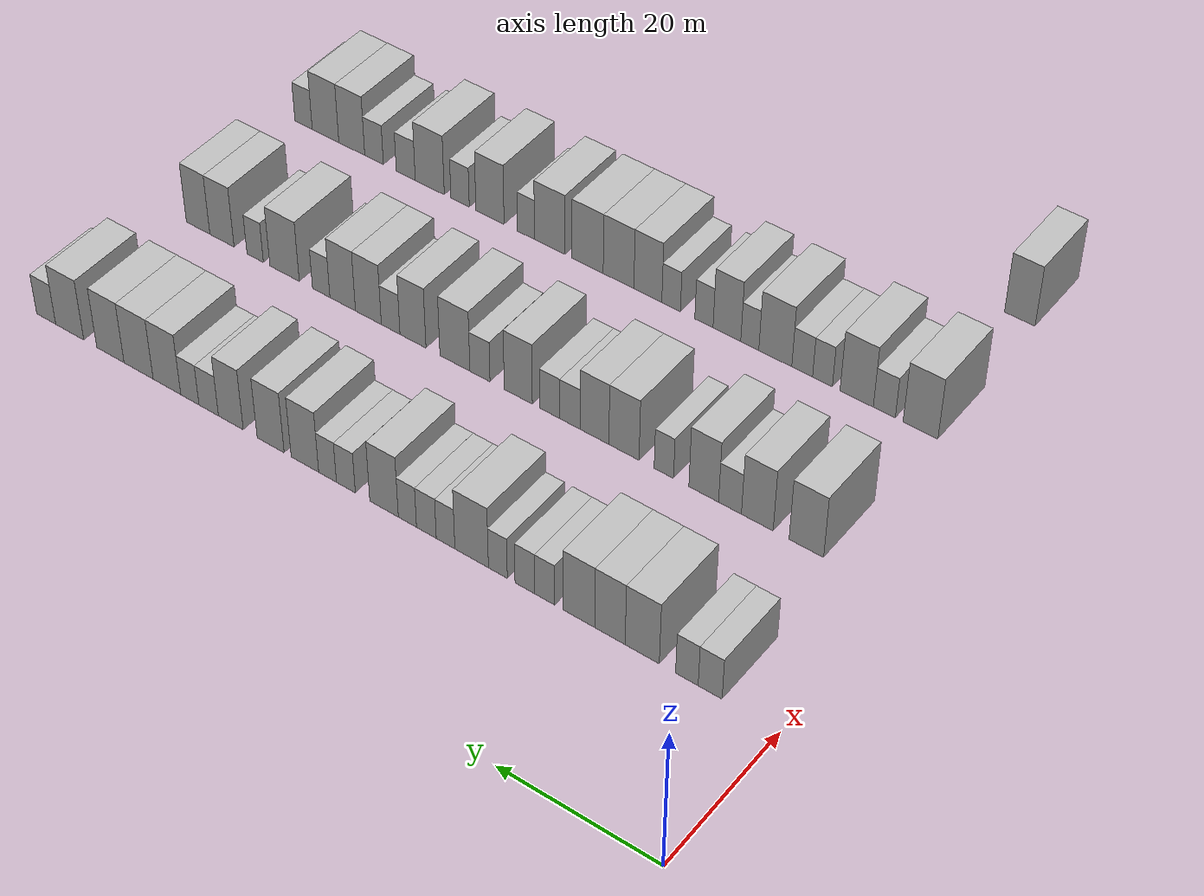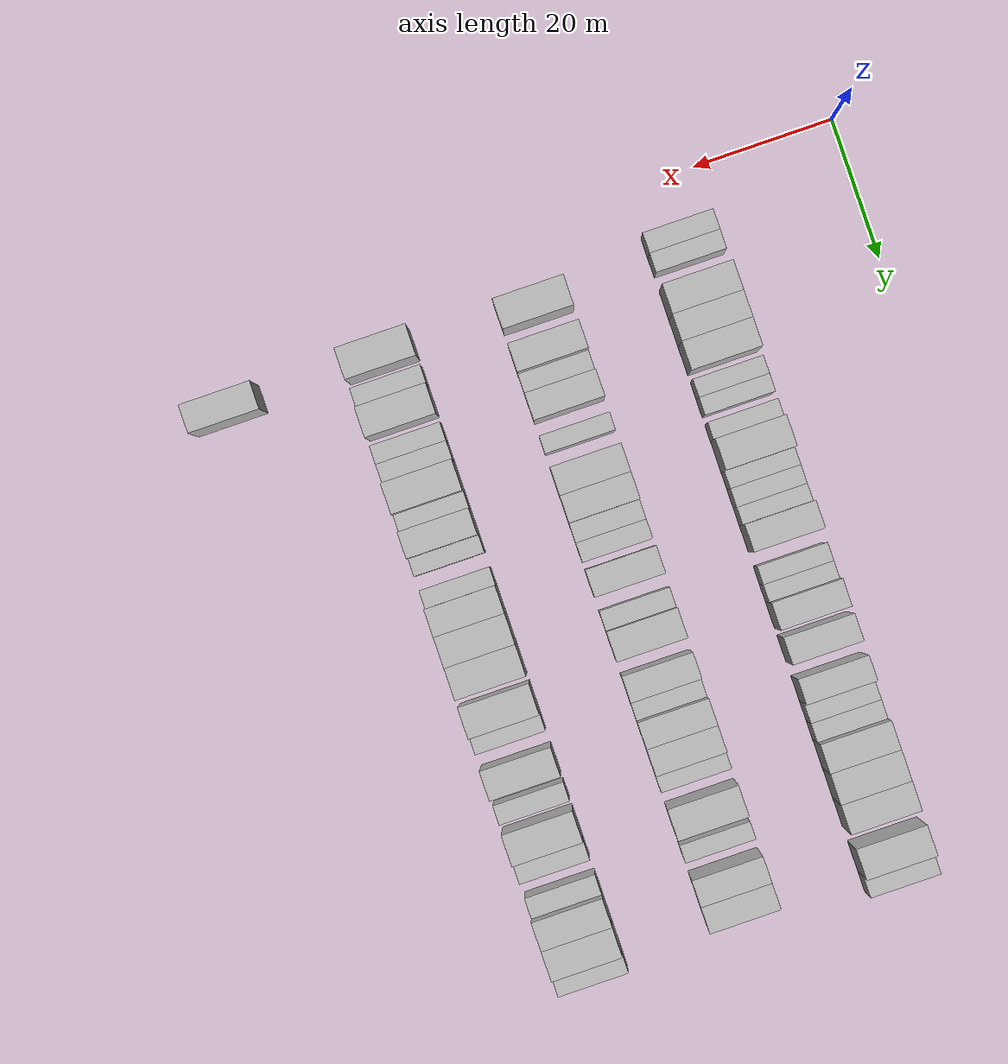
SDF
<sdf version="1.6">
 <world name="default">
  <model name="building_88">
   <static>1</static>
   <pose>25.0000 8.4128 0 0.000000 0.000000 0.000000</pose>
   <link name="link">
    <pose>0 0 3.00 0 0 0</pose>
    <collision name="collision"><geometry><box><size>10.0000 2.8950 6.0000</size></box></geometry></collision>
    <visual name="visual">
     <cast_shadows>0</cast_shadows>
     <geometry><box><size>10.0000 2.8950 6.0000</size></box></geometry>
     <material>
      <script>
       <uri>model://HANNAS_wall/materials/scripts</uri>
       <uri>model://HANNAS_wall/materials/textures</uri>
       <name>vrc/HANNAS_wall</name>
      </script>
     </material>
    </visual>
   </link>
  </model>
  <model name="building_89">
   <static>1</static>
   <pose>25.0000 11.2362 0 0.000000 0.000000 0.000000</pose>
   <link name="link">
    <pose>0 0 3.00 0 0 0</pose>
    <collision name="collision"><geometry><box><size>10.0000 2.7518 6.0000</size></box></geometry></collision>
    <visual name="visual">
     <cast_shadows>0</cast_shadows>
     <geometry><box><size>10.0000 2.7518 6.0000</size></box></geometry>
     <material>
      <script>
       <uri>model://HANNAS_wall/materials/scripts</uri>
       <uri>model://HANNAS_wall/materials/textures</uri>
       <name>vrc/HANNAS_wall</name>
      </script>
     </material>
    </visual>
   </link>
  </model>
  <model name="building_90">
   <static>1</static>
   <pose>25.0000 16.7315 0 0.000000 0.000000 0.000000</pose>
   <link name="link">
    <pose>0 0 4.50 0 0 0</pose>
    <collision name="collision"><geometry><box><size>10.0000 4.2388 9.0000</size></box></geometry></collision>
    <visual name="visual">
     <cast_shadows>0</cast_shadows>
     <geometry><box><size>10.0000 4.2388 9.0000</size></box></geometry>
     <material>
      <script>
       <uri>model://HANNAS_wall/materials/scripts</uri>
       <uri>model://HANNAS_wall/materials/textures</uri>
       <name>vrc/HANNAS_wall</name>
      </script>
     </material>
    </visual>
   </link>
  </model>
  <model name="building_91">
   <static>1</static>
   <pose>25.0000 20.7581 0 0.000000 0.000000 0.000000</pose>
   <link name="link">
    <pose>0 0 4.50 0 0 0</pose>
    <collision name="collision"><geometry><box><size>10.0000 3.8143 9.0000</size></box></geometry></collision>
    <visual name="visual">
     <cast_shadows>0</cast_shadows>
     <geometry><box><size>10.0000 3.8143 9.0000</size></box></geometry>
     <material>
      <script>
       <uri>model://HANNAS_wall/materials/scripts</uri>
       <uri>model://HANNAS_wall/materials/textures</uri>
       <name>vrc/HANNAS_wall</name>
      </script>
     </material>
    </visual>
   </link>
  </model>
  <model name="building_92">
   <static>1</static>
   <pose>25.0000 24.7005 0 0.000000 0.000000 0.000000</pose>
   <link name="link">
    <pose>0 0 4.50 0 0 0</pose>
    <collision name="collision"><geometry><box><size>10.0000 4.0705 9.0000</size></box></geometry></collision>
    <visual name="visual">
     <cast_shadows>0</cast_shadows>
     <geometry><box><size>10.0000 4.0705 9.0000</size></box></geometry>
     <material>
      <script>
       <uri>model://HANNAS_wall/materials/scripts</uri>
       <uri>model://HANNAS_wall/materials/textures</uri>
       <name>vrc/HANNAS_wall</name>
      </script>
     </material>
    </visual>
   </link>
  </model>
  <model name="building_93">
   <static>1</static>
   <pose>25.0000 29.0292 0 0.000000 0.000000 0.000000</pose>
   <link name="link">
    <pose>0 0 3.00 0 0 0</pose>
    <collision name="collision"><geometry><box><size>10.0000 2.5867 6.0000</size></box></geometry></collision>
    <visual name="visual">
     <cast_shadows>0</cast_shadows>
     <geometry><box><size>10.0000 2.5867 6.0000</size></box></geometry>
     <material>
      <script>
       <uri>model://HANNAS_wall/materials/scripts</uri>
       <uri>model://HANNAS_wall/materials/textures</uri>
       <name>vrc/HANNAS_wall</name>
      </script>
     </material>
    </visual>
   </link>
  </model>
  <model name="building_94">
   <static>1</static>
   <pose>25.0000 31.5953 0 0.000000 0.000000 0.000000</pose>
   <link name="link">
    <pose>0 0 3.00 0 0 0</pose>
    <collision name="collision"><geometry><box><size>10.0000 2.5455 6.0000</size></box></geometry></collision>
    <visual name="visual">
     <cast_shadows>0</cast_shadows>
     <geometry><box><size>10.0000 2.5455 6.0000</size></box></geometry>
     <material>
      <script>
       <uri>model://HANNAS_wall/materials/scripts</uri>
       <uri>model://HANNAS_wall/materials/textures</uri>
       <name>vrc/HANNAS_wall</name>
      </script>
     </material>
    </visual>
   </link>
  </model>
  <model name="building_95">
   <static>1</static>
   <pose>25.0000 35.1066 0 0.000000 0.000000 0.000000</pose>
   <link name="link">
    <pose>0 0 3.00 0 0 0</pose>
    <collision name="collision"><geometry><box><size>10.0000 2.4771 6.0000</size></box></geometry></collision>
    <visual name="visual">
     <cast_shadows>0</cast_shadows>
     <geometry><box><size>10.0000 2.4771 6.0000</size></box></geometry>
     <material>
      <script>
       <uri>model://HANNAS_wall/materials/scripts</uri>
       <uri>model://HANNAS_wall/materials/textures</uri>
       <name>vrc/HANNAS_wall</name>
      </script>
     </material>
    </visual>
   </link>
  </model>
  <model name="building_96">
   <static>1</static>
   <pose>25.0000 38.5634 0 0.000000 0.000000 0.000000</pose>
   <link name="link">
    <pose>0 0 4.50 0 0 0</pose>
    <collision name="collision"><geometry><box><size>10.0000 4.4365 9.0000</size></box></geometry></collision>
    <visual name="visual">
     <cast_shadows>0</cast_shadows>
     <geometry><box><size>10.0000 4.4365 9.0000</size></box></geometry>
     <material>
      <script>
       <uri>model://HANNAS_wall/materials/scripts</uri>
       <uri>model://HANNAS_wall/materials/textures</uri>
       <name>vrc/HANNAS_wall</name>
      </script>
     </material>
    </visual>
   </link>
  </model>
  <model name="building_97">
   <static>1</static>
   <pose>25.0000 42.0231 0 0.000000 0.000000 0.000000</pose>
   <link name="link">
    <pose>0 0 3.00 0 0 0</pose>
    <collision name="collision"><geometry><box><size>10.0000 2.4829 6.0000</size></box></geometry></collision>
    <visual name="visual">
     <cast_shadows>0</cast_shadows>
     <geometry><box><size>10.0000 2.4829 6.0000</size></box></geometry>
     <material>
      <script>
       <uri>model://HANNAS_wall/materials/scripts</uri>
       <uri>model://HANNAS_wall/materials/textures</uri>
       <name>vrc/HANNAS_wall</name>
      </script>
     </material>
    </visual>
   </link>
  </model>
  <model name="building_98">
   <static>1</static>
   <pose>25.0000 44.5956 0 0.000000 0.000000 0.000000</pose>
   <link name="link">
    <pose>0 0 3.00 0 0 0</pose>
    <collision name="collision"><geometry><box><size>10.0000 2.6620 6.0000</size></box></geometry></collision>
    <visual name="visual">
     <cast_shadows>0</cast_shadows>
     <geometry><box><size>10.0000 2.6620 6.0000</size></box></geometry>
     <material>
      <script>
       <uri>model://HANNAS_wall/materials/scripts</uri>
       <uri>model://HANNAS_wall/materials/textures</uri>
       <name>vrc/HANNAS_wall</name>
      </script>
     </material>
    </visual>
   </link>
  </model>
  <model name="building_99">
   <static>1</static>
   <pose>25.0000 47.1581 0 0.000000 0.000000 0.000000</pose>
   <link name="link">
    <pose>0 0 3.00 0 0 0</pose>
    <collision name="collision"><geometry><box><size>10.0000 2.4629 6.0000</size></box></geometry></collision>
    <visual name="visual">
     <cast_shadows>0</cast_shadows>
     <geometry><box><size>10.0000 2.4629 6.0000</size></box></geometry>
     <material>
      <script>
       <uri>model://HANNAS_wall/materials/scripts</uri>
       <uri>model://HANNAS_wall/materials/textures</uri>
       <name>vrc/HANNAS_wall</name>
      </script>
     </material>
    </visual>
   </link>
  </model>
  <model name="building_100">
   <static>1</static>
   <pose>25.0000 50.3414 0 0.000000 0.000000 0.000000</pose>
   <link name="link">
    <pose>0 0 4.50 0 0 0</pose>
    <collision name="collision"><geometry><box><size>10.0000 3.9038 9.0000</size></box></geometry></collision>
    <visual name="visual">
     <cast_shadows>0</cast_shadows>
     <geometry><box><size>10.0000 3.9038 9.0000</size></box></geometry>
     <material>
      <script>
       <uri>model://HANNAS_wall/materials/scripts</uri>
       <uri>model://HANNAS_wall/materials/textures</uri>
       <name>vrc/HANNAS_wall</name>
      </script>
     </material>
    </visual>
   </link>
  </model>
  <model name="building_101">
   <static>1</static>
   <pose>25.0000 55.6025 0 0.000000 0.000000 0.000000</pose>
   <link name="link">
    <pose>0 0 3.00 0 0 0</pose>
    <collision name="collision"><geometry><box><size>10.0000 2.6183 6.0000</size></box></geometry></collision>
    <visual name="visual">
     <cast_shadows>0</cast_shadows>
     <geometry><box><size>10.0000 2.6183 6.0000</size></box></geometry>
     <material>
      <script>
       <uri>model://HANNAS_wall/materials/scripts</uri>
       <uri>model://HANNAS_wall/materials/textures</uri>
       <name>vrc/HANNAS_wall</name>
      </script>
     </material>
    </visual>
   </link>
  </model>
  <model name="building_102">
   <static>1</static>
   <pose>25.0000 58.1548 0 0.000000 0.000000 0.000000</pose>
   <link name="link">
    <pose>0 0 3.00 0 0 0</pose>
    <collision name="collision"><geometry><box><size>10.0000 2.4864 6.0000</size></box></geometry></collision>
    <visual name="visual">
     <cast_shadows>0</cast_shadows>
     <geometry><box><size>10.0000 2.4864 6.0000</size></box></geometry>
     <material>
      <script>
       <uri>model://HANNAS_wall/materials/scripts</uri>
       <uri>model://HANNAS_wall/materials/textures</uri>
       <name>vrc/HANNAS_wall</name>
      </script>
     </material>
    </visual>
   </link>
  </model>
  <model name="building_103">
   <static>1</static>
   <pose>25.0000 61.3391 0 0.000000 0.000000 0.000000</pose>
   <link name="link">
    <pose>0 0 4.50 0 0 0</pose>
    <collision name="collision"><geometry><box><size>10.0000 3.8822 9.0000</size></box></geometry></collision>
    <visual name="visual">
     <cast_shadows>0</cast_shadows>
     <geometry><box><size>10.0000 3.8822 9.0000</size></box></geometry>
     <material>
      <script>
       <uri>model://HANNAS_wall/materials/scripts</uri>
       <uri>model://HANNAS_wall/materials/textures</uri>
       <name>vrc/HANNAS_wall</name>
      </script>
     </material>
    </visual>
   </link>
  </model>
  <model name="building_104">
   <static>1</static>
   <pose>25.0000 66.2139 0 0.000000 0.000000 0.000000</pose>
   <link name="link">
    <pose>0 0 4.50 0 0 0</pose>
    <collision name="collision"><geometry><box><size>10.0000 3.8675 9.0000</size></box></geometry></collision>
    <visual name="visual">
     <cast_shadows>0</cast_shadows>
     <geometry><box><size>10.0000 3.8675 9.0000</size></box></geometry>
     <material>
      <script>
       <uri>model://HANNAS_wall/materials/scripts</uri>
       <uri>model://HANNAS_wall/materials/textures</uri>
       <name>vrc/HANNAS_wall</name>
      </script>
     </material>
    </visual>
   </link>
  </model>
  <model name="building_105">
   <static>1</static>
   <pose>25.0000 71.9529 0 0.000000 0.000000 0.000000</pose>
   <link name="link">
    <pose>0 0 4.50 0 0 0</pose>
    <collision name="collision"><geometry><box><size>10.0000 3.6105 9.0000</size></box></geometry></collision>
    <visual name="visual">
     <cast_shadows>0</cast_shadows>
     <geometry><box><size>10.0000 3.6105 9.0000</size></box></geometry>
     <material>
      <script>
       <uri>model://HANNAS_wall/materials/scripts</uri>
       <uri>model://HANNAS_wall/materials/textures</uri>
       <name>vrc/HANNAS_wall</name>
      </script>
     </material>
    </visual>
   </link>
  </model>
  <model name="building_106">
   <static>1</static>
   <pose>25.0000 75.1859 0 0.000000 0.000000 0.000000</pose>
   <link name="link">
    <pose>0 0 3.00 0 0 0</pose>
    <collision name="collision"><geometry><box><size>10.0000 2.8554 6.0000</size></box></geometry></collision>
    <visual name="visual">
     <cast_shadows>0</cast_shadows>
     <geometry><box><size>10.0000 2.8554 6.0000</size></box></geometry>
     <material>
      <script>
       <uri>model://HANNAS_wall/materials/scripts</uri>
       <uri>model://HANNAS_wall/materials/textures</uri>
       <name>vrc/HANNAS_wall</name>
      </script>
     </material>
    </visual>
   </link>
  </model>
  <model name="building_107">
   <static>1</static>
   <pose>25.0000 77.9592 0 0.000000 0.000000 0.000000</pose>
   <link name="link">
    <pose>0 0 3.00 0 0 0</pose>
    <collision name="collision"><geometry><box><size>10.0000 2.6913 6.0000</size></box></geometry></collision>
    <visual name="visual">
     <cast_shadows>0</cast_shadows>
     <geometry><box><size>10.0000 2.6913 6.0000</size></box></geometry>
     <material>
      <script>
       <uri>model://HANNAS_wall/materials/scripts</uri>
       <uri>model://HANNAS_wall/materials/textures</uri>
       <name>vrc/HANNAS_wall</name>
      </script>
     </material>
    </visual>
   </link>
  </model>
  <model name="building_108">
   <static>1</static>
   <pose>25.0000 81.3682 0 0.000000 0.000000 0.000000</pose>
   <link name="link">
    <pose>0 0 4.50 0 0 0</pose>
    <collision name="collision"><geometry><box><size>10.0000 4.1267 9.0000</size></box></geometry></collision>
    <visual name="visual">
     <cast_shadows>0</cast_shadows>
     <geometry><box><size>10.0000 4.1267 9.0000</size></box></geometry>
     <material>
      <script>
       <uri>model://HANNAS_wall/materials/scripts</uri>
       <uri>model://HANNAS_wall/materials/textures</uri>
       <name>vrc/HANNAS_wall</name>
      </script>
     </material>
    </visual>
   </link>
  </model>
  <model name="building_109">
   <static>1</static>
   <pose>25.0000 85.6349 0 0.000000 0.000000 0.000000</pose>
   <link name="link">
    <pose>0 0 4.50 0 0 0</pose>
    <collision name="collision"><geometry><box><size>10.0000 4.4066 9.0000</size></box></geometry></collision>
    <visual name="visual">
     <cast_shadows>0</cast_shadows>
     <geometry><box><size>10.0000 4.4066 9.0000</size></box></geometry>
     <material>
      <script>
       <uri>model://HANNAS_wall/materials/scripts</uri>
       <uri>model://HANNAS_wall/materials/textures</uri>
       <name>vrc/HANNAS_wall</name>
      </script>
     </material>
    </visual>
   </link>
  </model>
  <model name="building_110">
   <static>1</static>
   <pose>25.0000 89.9217 0 0.000000 0.000000 0.000000</pose>
   <link name="link">
    <pose>0 0 4.50 0 0 0</pose>
    <collision name="collision"><geometry><box><size>10.0000 4.1670 9.0000</size></box></geometry></collision>
    <visual name="visual">
     <cast_shadows>0</cast_shadows>
     <geometry><box><size>10.0000 4.1670 9.0000</size></box></geometry>
     <material>
      <script>
       <uri>model://HANNAS_wall/materials/scripts</uri>
       <uri>model://HANNAS_wall/materials/textures</uri>
       <name>vrc/HANNAS_wall</name>
      </script>
     </material>
    </visual>
   </link>
  </model>
  <model name="building_111">
   <static>1</static>
   <pose>25.0000 96.1864 0 0.000000 0.000000 0.000000</pose>
   <link name="link">
    <pose>0 0 4.50 0 0 0</pose>
    <collision name="collision"><geometry><box><size>10.0000 4.3625 9.0000</size></box></geometry></collision>
    <visual name="visual">
     <cast_shadows>0</cast_shadows>
     <geometry><box><size>10.0000 4.3625 9.0000</size></box></geometry>
     <material>
      <script>
       <uri>model://HANNAS_wall/materials/scripts</uri>
       <uri>model://HANNAS_wall/materials/textures</uri>
       <name>vrc/HANNAS_wall</name>
      </script>
     </material>
    </visual>
   </link>
  </model>
  <model name="building_112">
   <static>1</static>
   <pose>25.0000 99.8600 0 0.000000 0.000000 0.000000</pose>
   <link name="link">
    <pose>0 0 3.00 0 0 0</pose>
    <collision name="collision"><geometry><box><size>10.0000 2.9847 6.0000</size></box></geometry></collision>
    <visual name="visual">
     <cast_shadows>0</cast_shadows>
     <geometry><box><size>10.0000 2.9847 6.0000</size></box></geometry>
     <material>
      <script>
       <uri>model://HANNAS_wall/materials/scripts</uri>
       <uri>model://HANNAS_wall/materials/textures</uri>
       <name>vrc/HANNAS_wall</name>
      </script>
     </material>
    </visual>
   </link>
  </model>
  <model name="building_278">
   <static>1</static>
   <pose>47.0000 11.2818 0 0.000000 0.000000 0.000000</pose>
   <link name="link">
    <pose>0 0 4.50 0 0 0</pose>
    <collision name="collision"><geometry><box><size>10.0000 4.3058 9.0000</size></box></geometry></collision>
    <visual name="visual">
     <cast_shadows>0</cast_shadows>
     <geometry><box><size>10.0000 4.3058 9.0000</size></box></geometry>
     <material>
      <script>
       <uri>model://HANNAS_wall/materials/scripts</uri>
       <uri>model://HANNAS_wall/materials/textures</uri>
       <name>vrc/HANNAS_wall</name>
      </script>
     </material>
    </visual>
   </link>
  </model>
  <model name="building_279">
   <static>1</static>
   <pose>47.0000 17.4504 0 0.000000 0.000000 0.000000</pose>
   <link name="link">
    <pose>0 0 4.50 0 0 0</pose>
    <collision name="collision"><geometry><box><size>10.0000 4.0314 9.0000</size></box></geometry></collision>
    <visual name="visual">
     <cast_shadows>0</cast_shadows>
     <geometry><box><size>10.0000 4.0314 9.0000</size></box></geometry>
     <material>
      <script>
       <uri>model://HANNAS_wall/materials/scripts</uri>
       <uri>model://HANNAS_wall/materials/textures</uri>
       <name>vrc/HANNAS_wall</name>
      </script>
     </material>
    </visual>
   </link>
  </model>
  <model name="building_280">
   <static>1</static>
   <pose>47.0000 20.9299 0 0.000000 0.000000 0.000000</pose>
   <link name="link">
    <pose>0 0 3.00 0 0 0</pose>
    <collision name="collision"><geometry><box><size>10.0000 2.9275 6.0000</size></box></geometry></collision>
    <visual name="visual">
     <cast_shadows>0</cast_shadows>
     <geometry><box><size>10.0000 2.9275 6.0000</size></box></geometry>
     <material>
      <script>
       <uri>model://HANNAS_wall/materials/scripts</uri>
       <uri>model://HANNAS_wall/materials/textures</uri>
       <name>vrc/HANNAS_wall</name>
      </script>
     </material>
    </visual>
   </link>
  </model>
  <model name="building_281">
   <static>1</static>
   <pose>47.0000 24.3168 0 0.000000 0.000000 0.000000</pose>
   <link name="link">
    <pose>0 0 4.50 0 0 0</pose>
    <collision name="collision"><geometry><box><size>10.0000 3.8464 9.0000</size></box></geometry></collision>
    <visual name="visual">
     <cast_shadows>0</cast_shadows>
     <geometry><box><size>10.0000 3.8464 9.0000</size></box></geometry>
     <material>
      <script>
       <uri>model://HANNAS_wall/materials/scripts</uri>
       <uri>model://HANNAS_wall/materials/textures</uri>
       <name>vrc/HANNAS_wall</name>
      </script>
     </material>
    </visual>
   </link>
  </model>
  <model name="building_282">
   <static>1</static>
   <pose>47.0000 29.5136 0 0.000000 0.000000 0.000000</pose>
   <link name="link">
    <pose>0 0 3.00 0 0 0</pose>
    <collision name="collision"><geometry><box><size>10.0000 2.5473 6.0000</size></box></geometry></collision>
    <visual name="visual">
     <cast_shadows>0</cast_shadows>
     <geometry><box><size>10.0000 2.5473 6.0000</size></box></geometry>
     <material>
      <script>
       <uri>model://HANNAS_wall/materials/scripts</uri>
       <uri>model://HANNAS_wall/materials/textures</uri>
       <name>vrc/HANNAS_wall</name>
      </script>
     </material>
    </visual>
   </link>
  </model>
  <model name="building_283">
   <static>1</static>
   <pose>47.0000 34.8023 0 0.000000 0.000000 0.000000</pose>
   <link name="link">
    <pose>0 0 4.50 0 0 0</pose>
    <collision name="collision"><geometry><box><size>10.0000 4.0301 9.0000</size></box></geometry></collision>
    <visual name="visual">
     <cast_shadows>0</cast_shadows>
     <geometry><box><size>10.0000 4.0301 9.0000</size></box></geometry>
     <material>
      <script>
       <uri>model://HANNAS_wall/materials/scripts</uri>
       <uri>model://HANNAS_wall/materials/textures</uri>
       <name>vrc/HANNAS_wall</name>
      </script>
     </material>
    </visual>
   </link>
  </model>
  <model name="building_284">
   <static>1</static>
   <pose>47.0000 38.7387 0 0.000000 0.000000 0.000000</pose>
   <link name="link">
    <pose>0 0 4.50 0 0 0</pose>
    <collision name="collision"><geometry><box><size>10.0000 3.8426 9.0000</size></box></geometry></collision>
    <visual name="visual">
     <cast_shadows>0</cast_shadows>
     <geometry><box><size>10.0000 3.8426 9.0000</size></box></geometry>
     <material>
      <script>
       <uri>model://HANNAS_wall/materials/scripts</uri>
       <uri>model://HANNAS_wall/materials/textures</uri>
       <name>vrc/HANNAS_wall</name>
      </script>
     </material>
    </visual>
   </link>
  </model>
  <model name="building_285">
   <static>1</static>
   <pose>47.0000 42.0485 0 0.000000 0.000000 0.000000</pose>
   <link name="link">
    <pose>0 0 3.00 0 0 0</pose>
    <collision name="collision"><geometry><box><size>10.0000 2.7769 6.0000</size></box></geometry></collision>
    <visual name="visual">
     <cast_shadows>0</cast_shadows>
     <geometry><box><size>10.0000 2.7769 6.0000</size></box></geometry>
     <material>
      <script>
       <uri>model://HANNAS_wall/materials/scripts</uri>
       <uri>model://HANNAS_wall/materials/textures</uri>
       <name>vrc/HANNAS_wall</name>
      </script>
     </material>
    </visual>
   </link>
  </model>
  <model name="building_286">
   <static>1</static>
   <pose>47.0000 44.8257 0 0.000000 0.000000 0.000000</pose>
   <link name="link">
    <pose>0 0 3.00 0 0 0</pose>
    <collision name="collision"><geometry><box><size>10.0000 2.7775 6.0000</size></box></geometry></collision>
    <visual name="visual">
     <cast_shadows>0</cast_shadows>
     <geometry><box><size>10.0000 2.7775 6.0000</size></box></geometry>
     <material>
      <script>
       <uri>model://HANNAS_wall/materials/scripts</uri>
       <uri>model://HANNAS_wall/materials/textures</uri>
       <name>vrc/HANNAS_wall</name>
      </script>
     </material>
    </visual>
   </link>
  </model>
  <model name="building_287">
   <static>1</static>
   <pose>47.0000 49.1620 0 0.000000 0.000000 0.000000</pose>
   <link name="link">
    <pose>0 0 4.50 0 0 0</pose>
    <collision name="collision"><geometry><box><size>10.0000 3.8951 9.0000</size></box></geometry></collision>
    <visual name="visual">
     <cast_shadows>0</cast_shadows>
     <geometry><box><size>10.0000 3.8951 9.0000</size></box></geometry>
     <material>
      <script>
       <uri>model://HANNAS_wall/materials/scripts</uri>
       <uri>model://HANNAS_wall/materials/textures</uri>
       <name>vrc/HANNAS_wall</name>
      </script>
     </material>
    </visual>
   </link>
  </model>
  <model name="building_288">
   <static>1</static>
   <pose>47.0000 54.5222 0 0.000000 0.000000 0.000000</pose>
   <link name="link">
    <pose>0 0 3.00 0 0 0</pose>
    <collision name="collision"><geometry><box><size>10.0000 2.8253 6.0000</size></box></geometry></collision>
    <visual name="visual">
     <cast_shadows>0</cast_shadows>
     <geometry><box><size>10.0000 2.8253 6.0000</size></box></geometry>
     <material>
      <script>
       <uri>model://HANNAS_wall/materials/scripts</uri>
       <uri>model://HANNAS_wall/materials/textures</uri>
       <name>vrc/HANNAS_wall</name>
      </script>
     </material>
    </visual>
   </link>
  </model>
  <model name="building_289">
   <static>1</static>
   <pose>47.0000 58.0649 0 0.000000 0.000000 0.000000</pose>
   <link name="link">
    <pose>0 0 4.50 0 0 0</pose>
    <collision name="collision"><geometry><box><size>10.0000 4.2601 9.0000</size></box></geometry></collision>
    <visual name="visual">
     <cast_shadows>0</cast_shadows>
     <geometry><box><size>10.0000 4.2601 9.0000</size></box></geometry>
     <material>
      <script>
       <uri>model://HANNAS_wall/materials/scripts</uri>
       <uri>model://HANNAS_wall/materials/textures</uri>
       <name>vrc/HANNAS_wall</name>
      </script>
     </material>
    </visual>
   </link>
  </model>
  <model name="building_290">
   <static>1</static>
   <pose>47.0000 64.0743 0 0.000000 0.000000 0.000000</pose>
   <link name="link">
    <pose>0 0 4.50 0 0 0</pose>
    <collision name="collision"><geometry><box><size>10.0000 3.7587 9.0000</size></box></geometry></collision>
    <visual name="visual">
     <cast_shadows>0</cast_shadows>
     <geometry><box><size>10.0000 3.7587 9.0000</size></box></geometry>
     <material>
      <script>
       <uri>model://HANNAS_wall/materials/scripts</uri>
       <uri>model://HANNAS_wall/materials/textures</uri>
       <name>vrc/HANNAS_wall</name>
      </script>
     </material>
    </visual>
   </link>
  </model>
  <model name="building_291">
   <static>1</static>
   <pose>47.0000 67.3117 0 0.000000 0.000000 0.000000</pose>
   <link name="link">
    <pose>0 0 3.00 0 0 0</pose>
    <collision name="collision"><geometry><box><size>10.0000 2.7162 6.0000</size></box></geometry></collision>
    <visual name="visual">
     <cast_shadows>0</cast_shadows>
     <geometry><box><size>10.0000 2.7162 6.0000</size></box></geometry>
     <material>
      <script>
       <uri>model://HANNAS_wall/materials/scripts</uri>
       <uri>model://HANNAS_wall/materials/textures</uri>
       <name>vrc/HANNAS_wall</name>
      </script>
     </material>
    </visual>
   </link>
  </model>
  <model name="building_292">
   <static>1</static>
   <pose>47.0000 70.5729 0 0.000000 0.000000 0.000000</pose>
   <link name="link">
    <pose>0 0 4.50 0 0 0</pose>
    <collision name="collision"><geometry><box><size>10.0000 3.8060 9.0000</size></box></geometry></collision>
    <visual name="visual">
     <cast_shadows>0</cast_shadows>
     <geometry><box><size>10.0000 3.8060 9.0000</size></box></geometry>
     <material>
      <script>
       <uri>model://HANNAS_wall/materials/scripts</uri>
       <uri>model://HANNAS_wall/materials/textures</uri>
       <name>vrc/HANNAS_wall</name>
      </script>
     </material>
    </visual>
   </link>
  </model>
  <model name="building_293">
   <static>1</static>
   <pose>47.0000 74.3754 0 0.000000 0.000000 0.000000</pose>
   <link name="link">
    <pose>0 0 4.50 0 0 0</pose>
    <collision name="collision"><geometry><box><size>10.0000 3.7990 9.0000</size></box></geometry></collision>
    <visual name="visual">
     <cast_shadows>0</cast_shadows>
     <geometry><box><size>10.0000 3.7990 9.0000</size></box></geometry>
     <material>
      <script>
       <uri>model://HANNAS_wall/materials/scripts</uri>
       <uri>model://HANNAS_wall/materials/textures</uri>
       <name>vrc/HANNAS_wall</name>
      </script>
     </material>
    </visual>
   </link>
  </model>
  <model name="building_294">
   <static>1</static>
   <pose>47.0000 77.5771 0 0.000000 0.000000 0.000000</pose>
   <link name="link">
    <pose>0 0 3.00 0 0 0</pose>
    <collision name="collision"><geometry><box><size>10.0000 2.6044 6.0000</size></box></geometry></collision>
    <visual name="visual">
     <cast_shadows>0</cast_shadows>
     <geometry><box><size>10.0000 2.6044 6.0000</size></box></geometry>
     <material>
      <script>
       <uri>model://HANNAS_wall/materials/scripts</uri>
       <uri>model://HANNAS_wall/materials/textures</uri>
       <name>vrc/HANNAS_wall</name>
      </script>
     </material>
    </visual>
   </link>
  </model>
  <model name="building_295">
   <static>1</static>
   <pose>47.0000 83.1102 0 0.000000 0.000000 0.000000</pose>
   <link name="link">
    <pose>0 0 4.50 0 0 0</pose>
    <collision name="collision"><geometry><box><size>10.0000 4.4619 9.0000</size></box></geometry></collision>
    <visual name="visual">
     <cast_shadows>0</cast_shadows>
     <geometry><box><size>10.0000 4.4619 9.0000</size></box></geometry>
     <material>
      <script>
       <uri>model://HANNAS_wall/materials/scripts</uri>
       <uri>model://HANNAS_wall/materials/textures</uri>
       <name>vrc/HANNAS_wall</name>
      </script>
     </material>
    </visual>
   </link>
  </model>
  <model name="building_296">
   <static>1</static>
   <pose>47.0000 87.6035 0 0.000000 0.000000 0.000000</pose>
   <link name="link">
    <pose>0 0 3.00 0 0 0</pose>
    <collision name="collision"><geometry><box><size>10.0000 2.5248 6.0000</size></box></geometry></collision>
    <visual name="visual">
     <cast_shadows>0</cast_shadows>
     <geometry><box><size>10.0000 2.5248 6.0000</size></box></geometry>
     <material>
      <script>
       <uri>model://HANNAS_wall/materials/scripts</uri>
       <uri>model://HANNAS_wall/materials/textures</uri>
       <name>vrc/HANNAS_wall</name>
      </script>
     </material>
    </visual>
   </link>
  </model>
  <model name="building_297">
   <static>1</static>
   <pose>47.0000 92.7547 0 0.000000 0.000000 0.000000</pose>
   <link name="link">
    <pose>0 0 4.50 0 0 0</pose>
    <collision name="collision"><geometry><box><size>10.0000 3.7776 9.0000</size></box></geometry></collision>
    <visual name="visual">
     <cast_shadows>0</cast_shadows>
     <geometry><box><size>10.0000 3.7776 9.0000</size></box></geometry>
     <material>
      <script>
       <uri>model://HANNAS_wall/materials/scripts</uri>
       <uri>model://HANNAS_wall/materials/textures</uri>
       <name>vrc/HANNAS_wall</name>
      </script>
     </material>
    </visual>
   </link>
  </model>
  <model name="building_298">
   <static>1</static>
   <pose>47.0000 96.4904 0 0.000000 0.000000 0.000000</pose>
   <link name="link">
    <pose>0 0 4.50 0 0 0</pose>
    <collision name="collision"><geometry><box><size>10.0000 3.6939 9.0000</size></box></geometry></collision>
    <visual name="visual">
     <cast_shadows>0</cast_shadows>
     <geometry><box><size>10.0000 3.6939 9.0000</size></box></geometry>
     <material>
      <script>
       <uri>model://HANNAS_wall/materials/scripts</uri>
       <uri>model://HANNAS_wall/materials/textures</uri>
       <name>vrc/HANNAS_wall</name>
      </script>
     </material>
    </visual>
   </link>
  </model>
  <model name="building_469">
   <static>1</static>
   <pose>69.0000 10.7435 0 0.000000 0.000000 0.000000</pose>
   <link name="link">
    <pose>0 0 4.50 0 0 0</pose>
    <collision name="collision"><geometry><box><size>10.0000 4.4380 9.0000</size></box></geometry></collision>
    <visual name="visual">
     <cast_shadows>0</cast_shadows>
     <geometry><box><size>10.0000 4.4380 9.0000</size></box></geometry>
     <material>
      <script>
       <uri>model://HANNAS_wall/materials/scripts</uri>
       <uri>model://HANNAS_wall/materials/textures</uri>
       <name>vrc/HANNAS_wall</name>
      </script>
     </material>
    </visual>
   </link>
  </model>
  <model name="building_470">
   <static>1</static>
   <pose>69.0000 15.3808 0 0.000000 0.000000 0.000000</pose>
   <link name="link">
    <pose>0 0 3.00 0 0 0</pose>
    <collision name="collision"><geometry><box><size>10.0000 2.8367 6.0000</size></box></geometry></collision>
    <visual name="visual">
     <cast_shadows>0</cast_shadows>
     <geometry><box><size>10.0000 2.8367 6.0000</size></box></geometry>
     <material>
      <script>
       <uri>model://HANNAS_wall/materials/scripts</uri>
       <uri>model://HANNAS_wall/materials/textures</uri>
       <name>vrc/HANNAS_wall</name>
      </script>
     </material>
    </visual>
   </link>
  </model>
  <model name="building_471">
   <static>1</static>
   <pose>69.0000 18.9654 0 0.000000 0.000000 0.000000</pose>
   <link name="link">
    <pose>0 0 4.50 0 0 0</pose>
    <collision name="collision"><geometry><box><size>10.0000 4.3324 9.0000</size></box></geometry></collision>
    <visual name="visual">
     <cast_shadows>0</cast_shadows>
     <geometry><box><size>10.0000 4.3324 9.0000</size></box></geometry>
     <material>
      <script>
       <uri>model://HANNAS_wall/materials/scripts</uri>
       <uri>model://HANNAS_wall/materials/textures</uri>
       <name>vrc/HANNAS_wall</name>
      </script>
     </material>
    </visual>
   </link>
  </model>
  <model name="building_472">
   <static>1</static>
   <pose>69.0000 23.4364 0 0.000000 0.000000 0.000000</pose>
   <link name="link">
    <pose>0 0 3.00 0 0 0</pose>
    <collision name="collision"><geometry><box><size>10.0000 2.6097 6.0000</size></box></geometry></collision>
    <visual name="visual">
     <cast_shadows>0</cast_shadows>
     <geometry><box><size>10.0000 2.6097 6.0000</size></box></geometry>
     <material>
      <script>
       <uri>model://HANNAS_wall/materials/scripts</uri>
       <uri>model://HANNAS_wall/materials/textures</uri>
       <name>vrc/HANNAS_wall</name>
      </script>
     </material>
    </visual>
   </link>
  </model>
  <model name="building_473">
   <static>1</static>
   <pose>69.0000 26.1209 0 0.000000 0.000000 0.000000</pose>
   <link name="link">
    <pose>0 0 3.00 0 0 0</pose>
    <collision name="collision"><geometry><box><size>10.0000 2.7591 6.0000</size></box></geometry></collision>
    <visual name="visual">
     <cast_shadows>0</cast_shadows>
     <geometry><box><size>10.0000 2.7591 6.0000</size></box></geometry>
     <material>
      <script>
       <uri>model://HANNAS_wall/materials/scripts</uri>
       <uri>model://HANNAS_wall/materials/textures</uri>
       <name>vrc/HANNAS_wall</name>
      </script>
     </material>
    </visual>
   </link>
  </model>
  <model name="building_474">
   <static>1</static>
   <pose>69.0000 29.7145 0 0.000000 0.000000 0.000000</pose>
   <link name="link">
    <pose>0 0 4.50 0 0 0</pose>
    <collision name="collision"><geometry><box><size>10.0000 4.4282 9.0000</size></box></geometry></collision>
    <visual name="visual">
     <cast_shadows>0</cast_shadows>
     <geometry><box><size>10.0000 4.4282 9.0000</size></box></geometry>
     <material>
      <script>
       <uri>model://HANNAS_wall/materials/scripts</uri>
       <uri>model://HANNAS_wall/materials/textures</uri>
       <name>vrc/HANNAS_wall</name>
      </script>
     </material>
    </visual>
   </link>
  </model>
  <model name="building_475">
   <static>1</static>
   <pose>69.0000 33.1509 0 0.000000 0.000000 0.000000</pose>
   <link name="link">
    <pose>0 0 3.00 0 0 0</pose>
    <collision name="collision"><geometry><box><size>10.0000 2.4445 6.0000</size></box></geometry></collision>
    <visual name="visual">
     <cast_shadows>0</cast_shadows>
     <geometry><box><size>10.0000 2.4445 6.0000</size></box></geometry>
     <material>
      <script>
       <uri>model://HANNAS_wall/materials/scripts</uri>
       <uri>model://HANNAS_wall/materials/textures</uri>
       <name>vrc/HANNAS_wall</name>
      </script>
     </material>
    </visual>
   </link>
  </model>
  <model name="building_476">
   <static>1</static>
   <pose>69.0000 36.2645 0 0.000000 0.000000 0.000000</pose>
   <link name="link">
    <pose>0 0 4.50 0 0 0</pose>
    <collision name="collision"><geometry><box><size>10.0000 3.7828 9.0000</size></box></geometry></collision>
    <visual name="visual">
     <cast_shadows>0</cast_shadows>
     <geometry><box><size>10.0000 3.7828 9.0000</size></box></geometry>
     <material>
      <script>
       <uri>model://HANNAS_wall/materials/scripts</uri>
       <uri>model://HANNAS_wall/materials/textures</uri>
       <name>vrc/HANNAS_wall</name>
      </script>
     </material>
    </visual>
   </link>
  </model>
  <model name="building_477">
   <static>1</static>
   <pose>69.0000 39.4112 0 0.000000 0.000000 0.000000</pose>
   <link name="link">
    <pose>0 0 3.00 0 0 0</pose>
    <collision name="collision"><geometry><box><size>10.0000 2.5106 6.0000</size></box></geometry></collision>
    <visual name="visual">
     <cast_shadows>0</cast_shadows>
     <geometry><box><size>10.0000 2.5106 6.0000</size></box></geometry>
     <material>
      <script>
       <uri>model://HANNAS_wall/materials/scripts</uri>
       <uri>model://HANNAS_wall/materials/textures</uri>
       <name>vrc/HANNAS_wall</name>
      </script>
     </material>
    </visual>
   </link>
  </model>
  <model name="building_478">
   <static>1</static>
   <pose>69.0000 43.9615 0 0.000000 0.000000 0.000000</pose>
   <link name="link">
    <pose>0 0 3.00 0 0 0</pose>
    <collision name="collision"><geometry><box><size>10.0000 2.5901 6.0000</size></box></geometry></collision>
    <visual name="visual">
     <cast_shadows>0</cast_shadows>
     <geometry><box><size>10.0000 2.5901 6.0000</size></box></geometry>
     <material>
      <script>
       <uri>model://HANNAS_wall/materials/scripts</uri>
       <uri>model://HANNAS_wall/materials/textures</uri>
       <name>vrc/HANNAS_wall</name>
      </script>
     </material>
    </visual>
   </link>
  </model>
  <model name="building_479">
   <static>1</static>
   <pose>69.0000 47.2247 0 0.000000 0.000000 0.000000</pose>
   <link name="link">
    <pose>0 0 4.50 0 0 0</pose>
    <collision name="collision"><geometry><box><size>10.0000 3.9363 9.0000</size></box></geometry></collision>
    <visual name="visual">
     <cast_shadows>0</cast_shadows>
     <geometry><box><size>10.0000 3.9363 9.0000</size></box></geometry>
     <material>
      <script>
       <uri>model://HANNAS_wall/materials/scripts</uri>
       <uri>model://HANNAS_wall/materials/textures</uri>
       <name>vrc/HANNAS_wall</name>
      </script>
     </material>
    </visual>
   </link>
  </model>
  <model name="building_480">
   <static>1</static>
   <pose>69.0000 51.3688 0 0.000000 0.000000 0.000000</pose>
   <link name="link">
    <pose>0 0 4.50 0 0 0</pose>
    <collision name="collision"><geometry><box><size>10.0000 4.3518 9.0000</size></box></geometry></collision>
    <visual name="visual">
     <cast_shadows>0</cast_shadows>
     <geometry><box><size>10.0000 4.3518 9.0000</size></box></geometry>
     <material>
      <script>
       <uri>model://HANNAS_wall/materials/scripts</uri>
       <uri>model://HANNAS_wall/materials/textures</uri>
       <name>vrc/HANNAS_wall</name>
      </script>
     </material>
    </visual>
   </link>
  </model>
  <model name="building_481">
   <static>1</static>
   <pose>69.0000 55.7938 0 0.000000 0.000000 0.000000</pose>
   <link name="link">
    <pose>0 0 4.50 0 0 0</pose>
    <collision name="collision"><geometry><box><size>10.0000 4.4983 9.0000</size></box></geometry></collision>
    <visual name="visual">
     <cast_shadows>0</cast_shadows>
     <geometry><box><size>10.0000 4.4983 9.0000</size></box></geometry>
     <material>
      <script>
       <uri>model://HANNAS_wall/materials/scripts</uri>
       <uri>model://HANNAS_wall/materials/textures</uri>
       <name>vrc/HANNAS_wall</name>
      </script>
     </material>
    </visual>
   </link>
  </model>
  <model name="building_482">
   <static>1</static>
   <pose>69.0000 61.2702 0 0.000000 0.000000 0.000000</pose>
   <link name="link">
    <pose>0 0 4.50 0 0 0</pose>
    <collision name="collision"><geometry><box><size>10.0000 4.4543 9.0000</size></box></geometry></collision>
    <visual name="visual">
     <cast_shadows>0</cast_shadows>
     <geometry><box><size>10.0000 4.4543 9.0000</size></box></geometry>
     <material>
      <script>
       <uri>model://HANNAS_wall/materials/scripts</uri>
       <uri>model://HANNAS_wall/materials/textures</uri>
       <name>vrc/HANNAS_wall</name>
      </script>
     </material>
    </visual>
   </link>
  </model>
  <model name="building_483">
   <static>1</static>
   <pose>69.0000 64.7382 0 0.000000 0.000000 0.000000</pose>
   <link name="link">
    <pose>0 0 3.00 0 0 0</pose>
    <collision name="collision"><geometry><box><size>10.0000 2.4818 6.0000</size></box></geometry></collision>
    <visual name="visual">
     <cast_shadows>0</cast_shadows>
     <geometry><box><size>10.0000 2.4818 6.0000</size></box></geometry>
     <material>
      <script>
       <uri>model://HANNAS_wall/materials/scripts</uri>
       <uri>model://HANNAS_wall/materials/textures</uri>
       <name>vrc/HANNAS_wall</name>
      </script>
     </material>
    </visual>
   </link>
  </model>
  <model name="building_484">
   <static>1</static>
   <pose>69.0000 70.0764 0 0.000000 0.000000 0.000000</pose>
   <link name="link">
    <pose>0 0 4.50 0 0 0</pose>
    <collision name="collision"><geometry><box><size>10.0000 4.1946 9.0000</size></box></geometry></collision>
    <visual name="visual">
     <cast_shadows>0</cast_shadows>
     <geometry><box><size>10.0000 4.1946 9.0000</size></box></geometry>
     <material>
      <script>
       <uri>model://HANNAS_wall/materials/scripts</uri>
       <uri>model://HANNAS_wall/materials/textures</uri>
       <name>vrc/HANNAS_wall</name>
      </script>
     </material>
    </visual>
   </link>
  </model>
  <model name="building_485">
   <static>1</static>
   <pose>69.0000 74.5616 0 0.000000 0.000000 0.000000</pose>
   <link name="link">
    <pose>0 0 3.00 0 0 0</pose>
    <collision name="collision"><geometry><box><size>10.0000 2.7756 6.0000</size></box></geometry></collision>
    <visual name="visual">
     <cast_shadows>0</cast_shadows>
     <geometry><box><size>10.0000 2.7756 6.0000</size></box></geometry>
     <material>
      <script>
       <uri>model://HANNAS_wall/materials/scripts</uri>
       <uri>model://HANNAS_wall/materials/textures</uri>
       <name>vrc/HANNAS_wall</name>
      </script>
     </material>
    </visual>
   </link>
  </model>
  <model name="building_486">
   <static>1</static>
   <pose>69.0000 79.1692 0 0.000000 0.000000 0.000000</pose>
   <link name="link">
    <pose>0 0 4.50 0 0 0</pose>
    <collision name="collision"><geometry><box><size>10.0000 4.4397 9.0000</size></box></geometry></collision>
    <visual name="visual">
     <cast_shadows>0</cast_shadows>
     <geometry><box><size>10.0000 4.4397 9.0000</size></box></geometry>
     <material>
      <script>
       <uri>model://HANNAS_wall/materials/scripts</uri>
       <uri>model://HANNAS_wall/materials/textures</uri>
       <name>vrc/HANNAS_wall</name>
      </script>
     </material>
    </visual>
   </link>
  </model>
  <model name="building_487">
   <static>1</static>
   <pose>69.0000 82.8544 0 0.000000 0.000000 0.000000</pose>
   <link name="link">
    <pose>0 0 3.00 0 0 0</pose>
    <collision name="collision"><geometry><box><size>10.0000 2.9306 6.0000</size></box></geometry></collision>
    <visual name="visual">
     <cast_shadows>0</cast_shadows>
     <geometry><box><size>10.0000 2.9306 6.0000</size></box></geometry>
     <material>
      <script>
       <uri>model://HANNAS_wall/materials/scripts</uri>
       <uri>model://HANNAS_wall/materials/textures</uri>
       <name>vrc/HANNAS_wall</name>
      </script>
     </material>
    </visual>
   </link>
  </model>
  <model name="building_488">
   <static>1</static>
   <pose>69.0000 87.7725 0 0.000000 0.000000 0.000000</pose>
   <link name="link">
    <pose>0 0 3.00 0 0 0</pose>
    <collision name="collision"><geometry><box><size>10.0000 2.9057 6.0000</size></box></geometry></collision>
    <visual name="visual">
     <cast_shadows>0</cast_shadows>
     <geometry><box><size>10.0000 2.9057 6.0000</size></box></geometry>
     <material>
      <script>
       <uri>model://HANNAS_wall/materials/scripts</uri>
       <uri>model://HANNAS_wall/materials/textures</uri>
       <name>vrc/HANNAS_wall</name>
      </script>
     </material>
    </visual>
   </link>
  </model>
  <model name="building_489">
   <static>1</static>
   <pose>69.0000 91.2677 0 0.000000 0.000000 0.000000</pose>
   <link name="link">
    <pose>0 0 4.50 0 0 0</pose>
    <collision name="collision"><geometry><box><size>10.0000 4.0848 9.0000</size></box></geometry></collision>
    <visual name="visual">
     <cast_shadows>0</cast_shadows>
     <geometry><box><size>10.0000 4.0848 9.0000</size></box></geometry>
     <material>
      <script>
       <uri>model://HANNAS_wall/materials/scripts</uri>
       <uri>model://HANNAS_wall/materials/textures</uri>
       <name>vrc/HANNAS_wall</name>
      </script>
     </material>
    </visual>
   </link>
  </model>
  <model name="building_490">
   <static>1</static>
   <pose>69.0000 95.4266 0 0.000000 0.000000 0.000000</pose>
   <link name="link">
    <pose>0 0 4.50 0 0 0</pose>
    <collision name="collision"><geometry><box><size>10.0000 4.2329 9.0000</size></box></geometry></collision>
    <visual name="visual">
     <cast_shadows>0</cast_shadows>
     <geometry><box><size>10.0000 4.2329 9.0000</size></box></geometry>
     <material>
      <script>
       <uri>model://HANNAS_wall/materials/scripts</uri>
       <uri>model://HANNAS_wall/materials/textures</uri>
       <name>vrc/HANNAS_wall</name>
      </script>
     </material>
    </visual>
   </link>
  </model>
  <model name="building_491">
   <static>1</static>
   <pose>69.0000 98.9286 0 0.000000 0.000000 0.000000</pose>
   <link name="link">
    <pose>0 0 3.00 0 0 0</pose>
    <collision name="collision"><geometry><box><size>10.0000 2.7711 6.0000</size></box></geometry></collision>
    <visual name="visual">
     <cast_shadows>0</cast_shadows>
     <geometry><box><size>10.0000 2.7711 6.0000</size></box></geometry>
     <material>
      <script>
       <uri>model://HANNAS_wall/materials/scripts</uri>
       <uri>model://HANNAS_wall/materials/textures</uri>
       <name>vrc/HANNAS_wall</name>
      </script>
     </material>
    </visual>
   </link>
  </model>
  <model name="building_658">
   <static>1</static>
   <pose>91.0000 10.9736 0 0.000000 0.000000 0.000000</pose>
   <link name="link">
    <pose>0 0 4.50 0 0 0</pose>
    <collision name="collision"><geometry><box><size>10.0000 3.9835 9.0000</size></box></geometry></collision>
    <visual name="visual">
     <cast_shadows>0</cast_shadows>
     <geometry><box><size>10.0000 3.9835 9.0000</size></box></geometry>
     <material>
      <script>
       <uri>model://HANNAS_wall/materials/scripts</uri>
       <uri>model://HANNAS_wall/materials/textures</uri>
       <name>vrc/HANNAS_wall</name>
      </script>
     </material>
    </visual>
   </link>
  </model>
 </world>
</sdf>
